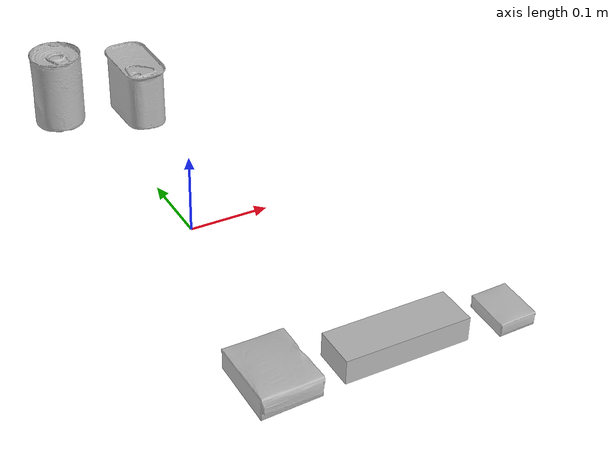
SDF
<?xml version="1.0" ?>
<sdf version="1.4">
  <world name="default">
    <light name="light1" type="point">
      <pose>0 0 1 0 0 0</pose>
      <diffuse>3 3 3 1</diffuse>
      <specular>3 3 3 1</specular>
    </light>
    <light name="light2" type="point">
      <pose>0 0.5 2 0 0 0</pose>
      <diffuse>1 1 1 1</diffuse>
      <specular>1 1 1 1</specular>
    </light>
    <light name="light3" type="point">
      <pose>0 0.5 2 0 0 0</pose>
      <diffuse>3 3 3 1</diffuse>
      <specular>3 3 3 1</specular>
    </light>
    <scene>
      <ambient>0.7 0.7 0.7</ambient>
    </scene>
    <model name="box1">
      <link name="link_box1">
        <collision name="default">
          <geometry>
            <mesh>
              <uri>model://pudding_box/collision_meshes/collision.obj</uri>
              <scale>0.5 0.5 0.5</scale>
            </mesh>
          </geometry>
          <surface>
            <friction>
              <ode>
                <mu>0.5</mu>
                <mu2>0.5</mu2>
              </ode>
            </friction>
          </surface>
        </collision>
        <visual name="default">
          <geometry>
            <mesh>
              <uri>model://pudding_box/visual_meshes/visual.dae</uri>
              <scale>0.5 0.5 0.5</scale>
            </mesh>
          </geometry>
        </visual>
        <inertial>
          <mass>0.040720973163843155</mass>
          <pose>0.00024474109522998333 0.0004033942532259971 -0.0002594413817860186 0.005213101818388509 -0.006603799159636292 0.020079815843731863</pose>
          <inertia>
            <ixx>1.1508242e-05</ixx>
            <iyy>7.742825e-06</iyy>
            <izz>1.6994923e-05</izz>
            <ixy>0</ixy>
            <ixz>0</ixz>
            <iyz>0</iyz>
          </inertia>
        </inertial>
      </link>
      <pose>0.22974133491516113 -0.3002520799636841 0.009862902574241161 0.022348654253257758 -0.011391670545103219 -9.35682625075692e-05</pose>
    </model>
    <model name="box2">
      <link name="link_box2">
        <collision name="default">
          <geometry>
            <mesh>
              <uri>model://jenga/collision_meshes/collision.obj</uri>
              <scale>1.0 1.0 1.0</scale>
            </mesh>
          </geometry>
          <surface>
            <friction>
              <ode>
                <mu>0.5</mu>
                <mu2>0.5</mu2>
              </ode>
            </friction>
          </surface>
        </collision>
        <visual name="default">
          <geometry>
            <mesh>
              <uri>model://jenga/visual_meshes/visual.dae</uri>
              <scale>1.0 1.0 1.0</scale>
            </mesh>
          </geometry>
        </visual>
        <inertial>
          <mass>0.2260044664144516</mass>
          <pose>-2.502855807051674e-07 -0.00010250010382151231 -4.0923401684267446e-05 0.0 -7.34215461761844e-07 0.0</pose>
          <inertia>
            <ixx>6.254092e-05</ixx>
            <iyy>0.00042377558</iyy>
            <izz>0.00045241645</izz>
            <ixy>0</ixy>
            <ixz>0</ixz>
            <iyz>0</iyz>
          </inertia>
        </inertial>
      </link>
      <pose>0.10000046342611313 -0.28989750146865845 0.014999995939433575 6.417760128967158e-09 -4.0148462242726147e-10 -1.3867349935155017e-07</pose>
    </model>
    <model name="box3">
      <link name="link_box3">
        <collision name="default">
          <geometry>
            <mesh>
              <uri>model://gelatin_box/collision_meshes/collision.obj</uri>
              <scale>1.0 1.0 1.0</scale>
            </mesh>
          </geometry>
          <surface>
            <friction>
              <ode>
                <mu>0.5</mu>
                <mu2>0.5</mu2>
              </ode>
            </friction>
          </surface>
        </collision>
        <visual name="default">
          <geometry>
            <mesh>
              <uri>model://gelatin_box/visual_meshes/visual.dae</uri>
              <scale>1.0 1.0 1.0</scale>
            </mesh>
          </geometry>
        </visual>
        <inertial>
          <mass>0.21249663829803467</mass>
          <pose>0.000431961816502735 0.00011156871914863586 -0.0003640321083366871 -0.0010503720865678746 -0.004755816824885886 0.016440563196489677</pose>
          <inertia>
            <ixx>0.00015000527</ixx>
            <iyy>0.000107147986</iyy>
            <izz>0.00022834145</izz>
            <ixy>0</ixy>
            <ixz>0</ixz>
            <iyz>0</iyz>
          </inertia>
        </inertial>
      </link>
      <pose>-0.04004868492484093 -0.28007155656814575 0.015168316662311554 0.005597501085090712 -0.007304575269236973 6.4789852531562275e-06</pose>
    </model>
    <model name="can1">
      <link name="link_can1">
        <collision name="default">
          <geometry>
            <mesh>
              <uri>model://tomato_soup_can/collision_meshes/collision.obj</uri>
              <scale>1.0 1.0 1.0</scale>
            </mesh>
          </geometry>
          <surface>
            <friction>
              <ode>
                <mu>0.5</mu>
                <mu2>0.5</mu2>
              </ode>
            </friction>
          </surface>
        </collision>
        <visual name="default">
          <geometry>
            <mesh>
              <uri>model://tomato_soup_can/visual_meshes/visual.dae</uri>
              <scale>1.0 1.0 1.0</scale>
            </mesh>
          </geometry>
        </visual>
        <inertial>
          <mass>0.23179346323013306</mass>
          <pose>0.00012652273289859295 0.00010805525380419567 -0.0017973976209759712 0.00702006934742656 0.00042299045868732465 -0.009902874376192201</pose>
          <inertia>
            <ixx>0.0002541419</ixx>
            <iyy>0.00025267305</iyy>
            <izz>0.00013171937</izz>
            <ixy>0</ixy>
            <ixz>0</ixz>
            <iyz>0</iyz>
          </inertia>
        </inertial>
      </link>
      <pose>-0.05005408450961113 0.31000205874443054 0.05127400904893875 -5.808719117675242e-07 -6.740010352765973e-07 -4.763132073126189e-07</pose>
    </model>
    <model name="can2">
      <link name="link_can2">
        <collision name="default">
          <geometry>
            <mesh>
              <uri>model://potted_meat_can/collision_meshes/collision.obj</uri>
              <scale>1.0 1.0 1.0</scale>
            </mesh>
          </geometry>
          <surface>
            <friction>
              <ode>
                <mu>0.5</mu>
                <mu2>0.5</mu2>
              </ode>
            </friction>
          </surface>
        </collision>
        <visual name="default">
          <geometry>
            <mesh>
              <uri>model://potted_meat_can/visual_meshes/visual.dae</uri>
              <scale>1.0 1.0 1.0</scale>
            </mesh>
          </geometry>
        </visual>
        <inertial>
          <mass>0.3195023536682129</mass>
          <pose>0.00022888148669153452 -5.98910846747458e-05 -0.0006367437308654189 -0.028093352727545092 -0.0072326048209280834 0.015406269022640915</pose>
          <inertia>
            <ixx>0.00041100648</ixx>
            <iyy>0.0002497176</iyy>
            <izz>0.00029892896</izz>
            <ixy>0</ixy>
            <ixz>0</ixz>
            <iyz>0</iyz>
          </inertia>
        </inertial>
      </link>
      <pose>0.049898453056812286 0.28000542521476746 0.04212800785899162 -4.720640982126793e-08 -4.068132933442659e-07 1.2034442061341442e-08</pose>
    </model>
  </world>
</sdf>
